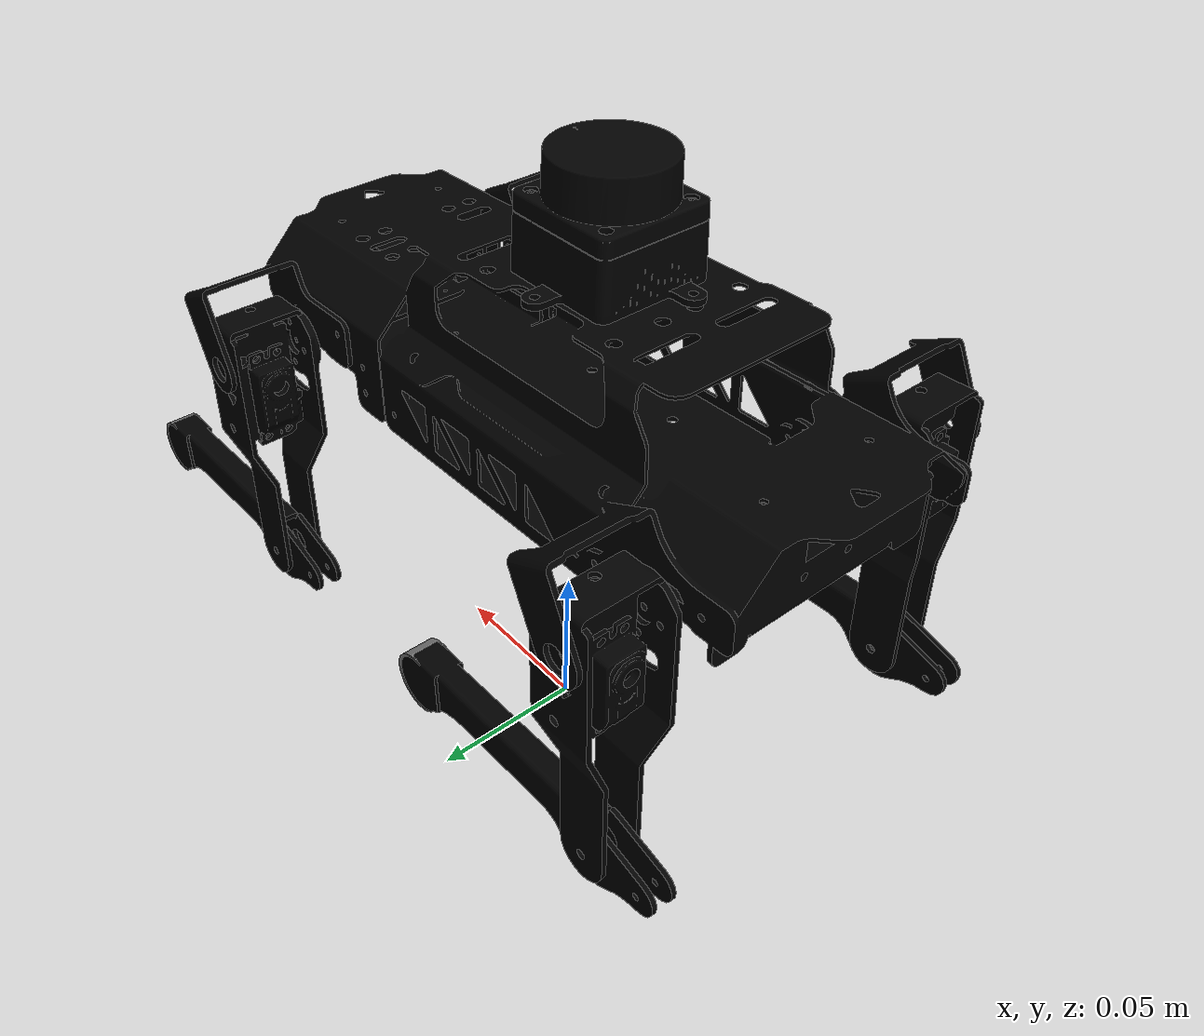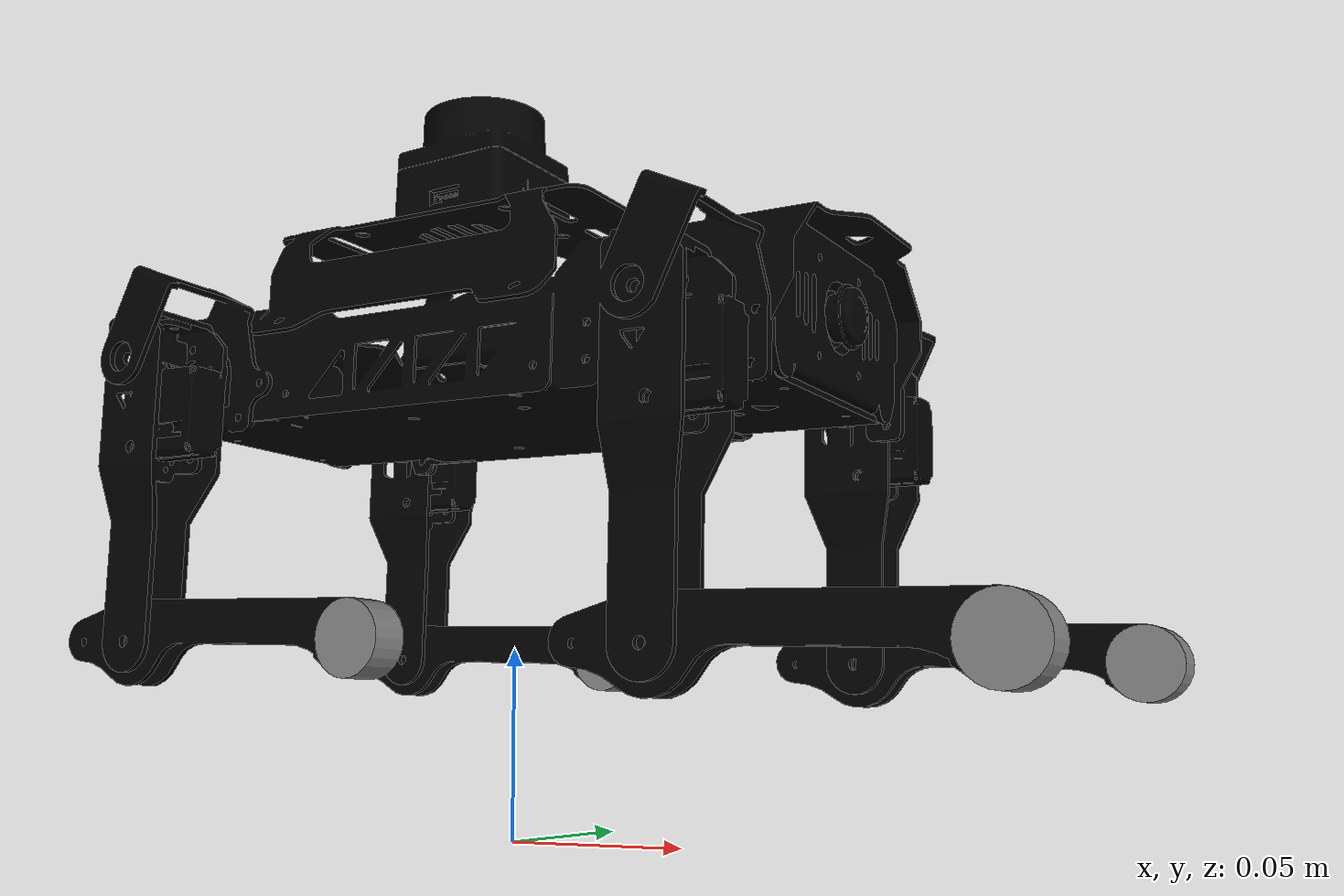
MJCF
<mujoco model="puppy">
  <compiler angle="radian"/>

  <default>
    <default class="HighTorqueServo">
      <geom contype="1" conaffinity="1"/>
      <joint damping="0.3" frictionloss="0.05" armature="0.02" limited="true"/>
      <position kp="45.0" kv="1.2" forcerange="-1.5 1.5"/>
    </default>
  </default>

  <asset>
    <mesh name="lidar_Link" content_type="model/stl" file="./meshes/lidar_Link.STL"/>
    <mesh name="base_link" content_type="model/stl" file="./meshes/base_link.STL"/>
    <mesh name="lb_link1" content_type="model/stl" file="./meshes/lb_link1.STL"/>
    <mesh name="lb_link2" content_type="model/stl" file="./meshes/lb_link2.STL"/>
    <mesh name="rb_link1" content_type="model/stl" file="./meshes/rb_link1.STL"/>
    <mesh name="rb_link2" content_type="model/stl" file="./meshes/rb_link2.STL"/>
    <mesh name="rf_link1" content_type="model/stl" file="./meshes/rf_link1.STL"/>
    <mesh name="rf_link2" content_type="model/stl" file="./meshes/rf_link2.STL"/>
    <mesh name="lf_link1" content_type="model/stl" file="./meshes/lf_link1.STL"/>
    <mesh name="lf_link2" content_type="model/stl" file="./meshes/lf_link2.STL"/>
    <mesh name="camera_link" content_type="model/stl" file="./meshes/camera_link.STL"/>
  </asset>

  <worldbody>
    <body name="base_footprint" >
    <!-- 이것은 로봇이 공중에 고정되어 추가되었음 -->
     <joint type="free" />
      <body name="base_link" pos="0 0 0.11" childclass="HighTorqueServo" >
        <body name="base_dummy" quat="0.707388 0 0 0.706825" childclass="HighTorqueServo">
          <inertial pos="-0.000281314 -0.00232094 0.0187443" quat="0.487495 0.512122 -0.512201 0.487575" mass="0.0656002" diaginertia="0.000137791 0.000101564 4.70815e-05"/>
          <geom type="mesh" rgba="0 0 0 1" mesh="base_link"/>
          <body name="lb_link1" pos="0.0420106 0.0778693 0.015988" quat="0.930141 -0.367203 0 0">
            <inertial pos="0.0139911 0.0129617 -0.0150641" quat="0.681953 0.285067 -0.259509 0.621555" mass="0.0101535" diaginertia="5.0547e-06 4.74867e-06 7.53492e-07"/>
            <joint name="lb_joint1" pos="0 0 0" axis="1 0 0" range="-2 2" actuatorfrcrange="-0.5 0.5"/>
            <geom type="mesh" rgba="0 0 0 1" mesh="lb_link1"/>
            <body name="lb_link2" pos="0.0120499 0.0525236 -0.0528775">
              <inertial pos="0.00325 -0.0273004 -0.0228964" quat="0.395706 0.918377 0 0" mass="0.00545593" diaginertia="4.05445e-06 3.95838e-06 2.11118e-07"/>
              <joint name="lb_joint2" pos="0 0 0" axis="1 0 0" range="-2 2" actuatorfrcrange="-0.5 0.5"/>
              <geom type="mesh" rgba="0 0 0 1" mesh="lb_link2"/>
              <body name="lb_link3" pos="0 -0.053 -0.053" quat="0.924909 0.380188 0 0">
                <inertial pos="0 0 0" quat="0.5 0.5 -0.5 0.5" mass="0.0391" diaginertia="5.443e-12 3.7713e-12 3.5422e-12"/>
                <geom size="0.0095 0.005" pos="0.0032 0 0.001" quat="0.707388 0 0.706825 0" type="cylinder"/>
              </body>
            </body>
          </body>
          <body name="rb_link1" pos="-0.0420106 0.0778693 0.015988" quat="0.930141 -0.367203 0 0">
            <inertial pos="-0.0139912 0.0129616 -0.0150641" quat="0.621547 0.25951 -0.285066 0.681961" mass="0.0101536" diaginertia="5.05471e-06 4.74867e-06 7.53497e-07"/>
            <joint name="rb_joint1" pos="0 0 0" axis="1 0 0" range="-2 2" actuatorfrcrange="-0.5 0.5"/>
            <geom type="mesh" rgba="0 0 0 1" mesh="rb_link1"/>
            <body name="rb_link2" pos="-0.0185499 0.0525236 -0.0528775">
              <inertial pos="0.00325 -0.0273004 -0.0228964" quat="0.395706 0.918377 0 0" mass="0.00545593" diaginertia="4.05445e-06 3.95838e-06 2.11118e-07"/>
              <joint name="rb_joint2" pos="0 0 0" axis="1 0 0" range="-2 2" actuatorfrcrange="-0.5 0.5"/>
              <geom type="mesh" rgba="0 0 0 1" mesh="rb_link2"/>
              <body name="rb_link3" pos="0 -0.053 -0.053" quat="0.924909 0.380188 0 0">
                <inertial pos="0 0 0" quat="0.5 0.5 -0.5 0.5" mass="0.0391" diaginertia="5.443e-12 3.7713e-12 3.5422e-12"/>
                <geom size="0.0095 0.005" pos="0.0032 0 0.001" quat="0.707388 0 0.706825 0" type="cylinder"/>
              </body>
            </body>
          </body>
          <body name="rf_link1" pos="-0.0420105 -0.0778693 0.0106513" quat="0.930141 -0.367203 0 0">
            <inertial pos="-0.0139912 0.0129616 -0.0150641" quat="0.621547 0.25951 -0.285066 0.681961" mass="0.0101536" diaginertia="5.05471e-06 4.74867e-06 7.53497e-07"/>
            <joint name="rf_joint1" pos="0 0 0" axis="1 0 0" range="-2 2" actuatorfrcrange="-0.5 0.5"/>
            <geom type="mesh" rgba="0 0 0 1" mesh="rf_link1"/>
            <body name="rf_link2" pos="-0.0185499 0.0525236 -0.0528775">
              <inertial pos="0.00325 -0.0273004 -0.0228964" quat="0.395706 0.918377 0 0" mass="0.00545593" diaginertia="4.05445e-06 3.95838e-06 2.11118e-07"/>
              <joint name="rf_joint2" pos="0 0 0" axis="1 0 0" range="-2 2" actuatorfrcrange="-0.5 0.5"/>
              <geom type="mesh" rgba="0 0 0 1" mesh="rf_link2"/>
              <body name="rf_link3" pos="0 -0.053 -0.053" quat="0.924909 0.380188 0 0">
                <inertial pos="0 0 0" quat="0.5 0.5 -0.5 0.5" mass="0.0391" diaginertia="5.443e-12 3.7713e-12 3.5422e-12"/>
                <geom size="0.0095 0.005" pos="0.0032 0 0.001" quat="0.707388 0 0.706825 0" type="cylinder"/>
              </body>
            </body>
          </body>
          <body name="lf_link1" pos="0.0420105 -0.0778693 0.0106513" quat="0.930141 -0.367203 0 0">
            <inertial pos="0.0139911 0.0129616 -0.0150641" quat="0.681953 0.285067 -0.259509 0.621556" mass="0.0101536" diaginertia="5.05473e-06 4.74868e-06 7.53497e-07"/>
            <joint name="lf_joint1" pos="0 0 0" axis="1 0 0" range="-2 2" actuatorfrcrange="-0.5 0.5"/>
            <geom type="mesh" rgba="0 0 0 1" mesh="lf_link1"/>
            <body name="lf_link2" pos="0.0120499 0.0525236 -0.0528775">
              <inertial pos="0.00325 -0.0273004 -0.0228964" quat="0.395706 0.918377 0 0" mass="0.00545593" diaginertia="4.05445e-06 3.95838e-06 2.11118e-07"/>
              <joint name="lf_joint2" pos="0 0 0" axis="1 0 0" range="-2 2" actuatorfrcrange="-0.5 0.5"/>
              <geom type="mesh" rgba="0 0 0 1" mesh="lf_link2"/>
              <body name="lf_link3" pos="0 -0.053 -0.053" quat="0.924909 0.380188 0 0">
                <inertial pos="0 0 0" quat="0.5 0.5 -0.5 0.5" mass="0.0391" diaginertia="5.443e-12 3.7713e-12 3.5422e-12"/>
                <geom size="0.0095 0.005" pos="0.0032 0 0.001" quat="0.707388 0 0.706825 0" type="cylinder"/>
              </body>
            </body>
          </body>
          <body name="camera_link" pos="0 -0.100687 0.0171095" quat="0.999853 0.017126 0 0">
            <inertial pos="7.88163e-12 0.00830783 -1.10275e-09" quat="0.5 0.5 -0.5 0.5" mass="0.0025559" diaginertia="8.93985e-08 8.07505e-08 7.57696e-08"/>
            <geom type="mesh" rgba="0 0 0 1" mesh="camera_link"/>
          </body>
        </body>
        <body name="lidar_frame" pos="-0.012242 -8.533e-05 0.092501">
          <inertial pos="8.65086e-05 9.02625e-05 -0.0183546" quat="-0.240675 0.665063 0.24282 0.663931" mass="0.0405423" diaginertia="8.2565e-06 5.16844e-06 4.85549e-06"/>
          <geom type="mesh" rgba="0 0 0 1" mesh="lidar_Link"/>
        </body>
      </body>
    </body>
  </worldbody>
 <actuator>
    <position name="act_lb_j1" joint="lb_joint1" class="HighTorqueServo"/>
    <position name="act_lb_j2" joint="lb_joint2" class="HighTorqueServo"/>

    <position name="act_rb_j1" joint="rb_joint1" class="HighTorqueServo"/>
    <position name="act_rb_j2" joint="rb_joint2" class="HighTorqueServo"/>

    <position name="act_rf_j1" joint="rf_joint1" class="HighTorqueServo"/>
    <position name="act_rf_j2" joint="rf_joint2" class="HighTorqueServo"/>

    <position name="act_lf_j1" joint="lf_joint1" class="HighTorqueServo"/>
    <position name="act_lf_j2" joint="lf_joint2" class="HighTorqueServo"/>
  </actuator>
</mujoco>
